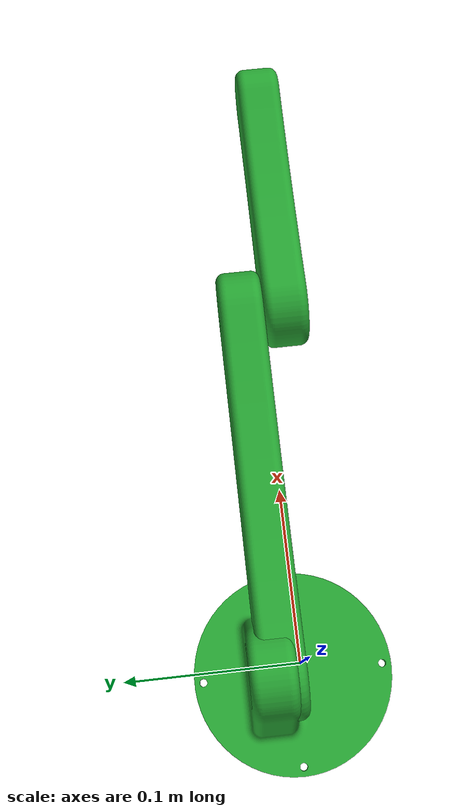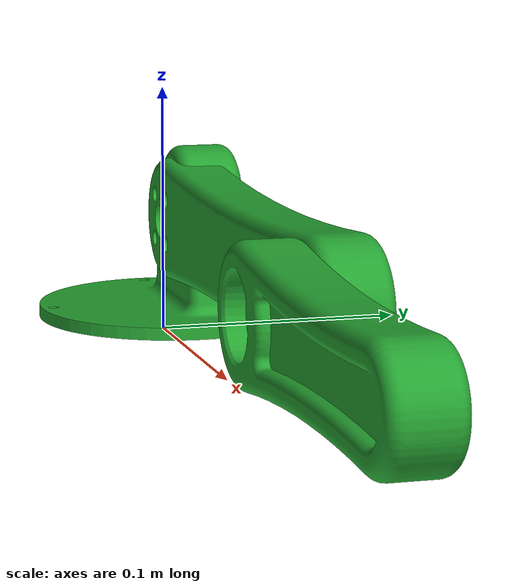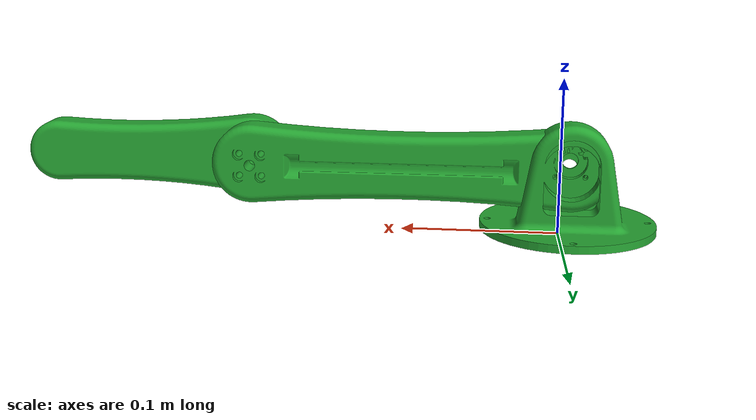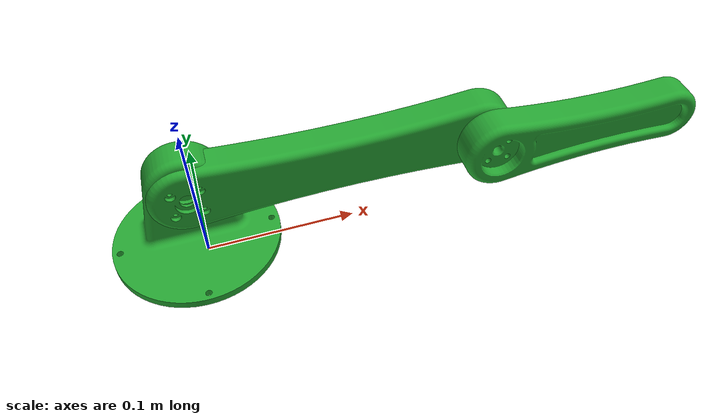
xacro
<?xml version = "1.0"?>

<robot  xmlns:xacro="http://www.ros.org/wiki/xacro">
    <link name="arm_base">
        <visual>
            <geometry>
                    <mesh filename="file:///home/mustafa/ros2_ws/src/mr_pinchy_robot_description/meshes/arm_base.stl" scale="0.001 0.001 0.001"/>

            </geometry>
            <origin xyz="-0.06 -0.05 -0.05" rpy="${pi/2} 0 ${pi/2}"/>
        </visual>
         <xacro:default_inertial />
         <collision>
            <origin xyz="-0.06 -0.05 -0.05" rpy="${pi/2} 0 ${pi/2}"/>
  20      <geometry>
                <box size = "0.05 0.05 0.05"/>
            </geometry>
  23    </collision>
    </link>

     <link name="arm_link_1">
        <visual>
            <geometry>
            <mesh filename="file:///home/mustafa/ros2_ws/src/mr_pinchy_robot_description/meshes/link_1.stl" scale="0.001 0.001 0.001"/>

                    <mesh filename="package://mr_pinchy_robot_description/meshes/link_1.stl" scale="0.001 0.001 0.001"/>
            </geometry>
            <origin xyz="-0.03 0 -0.02" rpy="${pi/2} 0 ${pi/2}"/>
        </visual>
        <collision>
            <origin xyz="-0.03 0 -0.02" rpy="${pi/2} 0 ${pi/2}"/>
  20      <geometry>
                <box size = "0.2 0.05 0.05"/>
            </geometry>
  23    </collision>
        <xacro:default_inertial />
    </link>

    <link name="arm_link_2">
        <visual>
            <geometry>
                        <mesh filename="file:///home/mustafa/ros2_ws/src/mr_pinchy_robot_description/meshes/link_2.stl" scale="0.001 0.001 0.001"/>

            </geometry>
            <origin xyz="0.15 0 -0.02" rpy="${pi/2} 0 ${1.5*pi }"/>
        </visual>
        <collision>
            <origin xyz="0.15 0 -0.02" rpy="${pi/2} 0 ${1.5*pi }"/>
  20      <geometry>
                <box size = "0.2 0.05 0.05"/>
            </geometry>
  23    </collision>
         <xacro:default_inertial />
    </link>

    <joint name="armbase_link1_joint" type = "revolute">
        <parent link="arm_base"/>
        <child link="arm_link_1"/>
        <origin xyz="0 0 0.04" rpy="0 0 0"/>
        <axis xyz="0 1 0"/>
        <limit lower="${-pi/2}" upper="0" effort="100" velocity="100"/>
    </joint>

    <joint name="link1_link2_joint" type = "revolute">
        <parent link="arm_link_1"/>
        <child link="arm_link_2"/>
        <origin xyz="0.2 0 0" rpy="0 0 0"/>
        <axis xyz="0 1 0"/>
        <limit lower="${-pi/2}" upper="${pi/2}" effort="100" velocity="100"/>
    </joint>

    <gazebo reference="arm_base">
        <material>Gazebo/Green</material>
    </gazebo>
    <gazebo reference="arm_link_1">
        <material>Gazebo/Green</material>
    </gazebo>
    <gazebo reference="arm_link_2">
        <material>Gazebo/Green</material>
    </gazebo>

<transmission name="armbase_link1_joint_trans">
  <type>transmission_interface/SimpleTransmission</type>
  <joint name="armbase_link1_joint">
    <hardwareInterface>position</hardwareInterface>
  </joint>
  <actuator name="base_link1_ac">
    <hardwareInterface>position</hardwareInterface>
    <mechanicalReduction>1</mechanicalReduction>
  </actuator>
</transmission>

<transmission name="link1_2_trans">
  <type>transmission_interface/SimpleTransmission</type>
  <joint name="link1_link2_joint">
    <hardwareInterface>position</hardwareInterface>
  </joint>
  <actuator name="link1_link2_ac">
    <hardwareInterface>position</hardwareInterface>
    <mechanicalReduction>1</mechanicalReduction>
  </actuator>
</transmission>

    <ros2_control name="RobotHardware" type="system" >
        <hardware>
      <plugin>gz_ros2_control/GazeboSimSystem</plugin>
        </hardware>
        <joint name="armbase_link1_joint">
    <command_interface name="position"/>
    <state_interface name="position"/>
  </joint>

  <joint name="link1_link2_joint">
    <command_interface name="position"/>
    <state_interface name="position"/>
  </joint>
    </ros2_control>

</robot>
